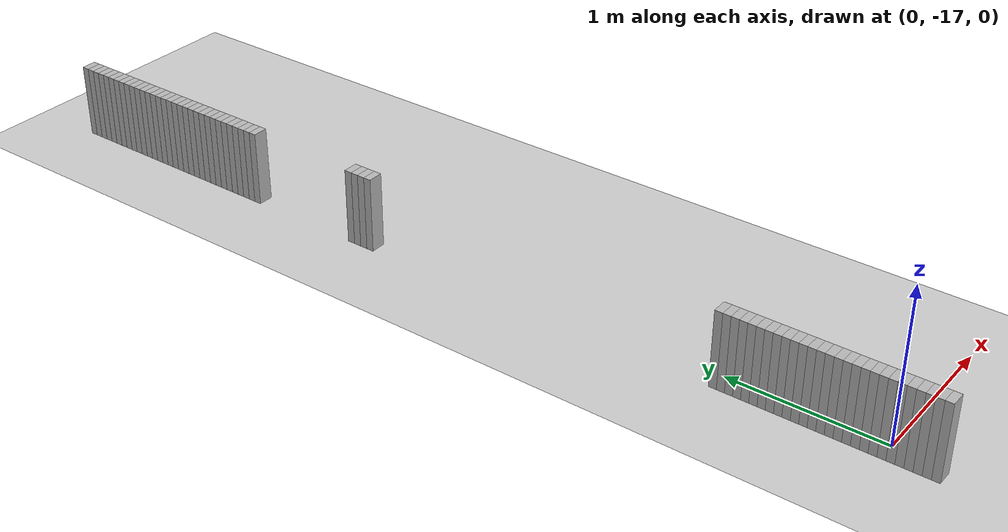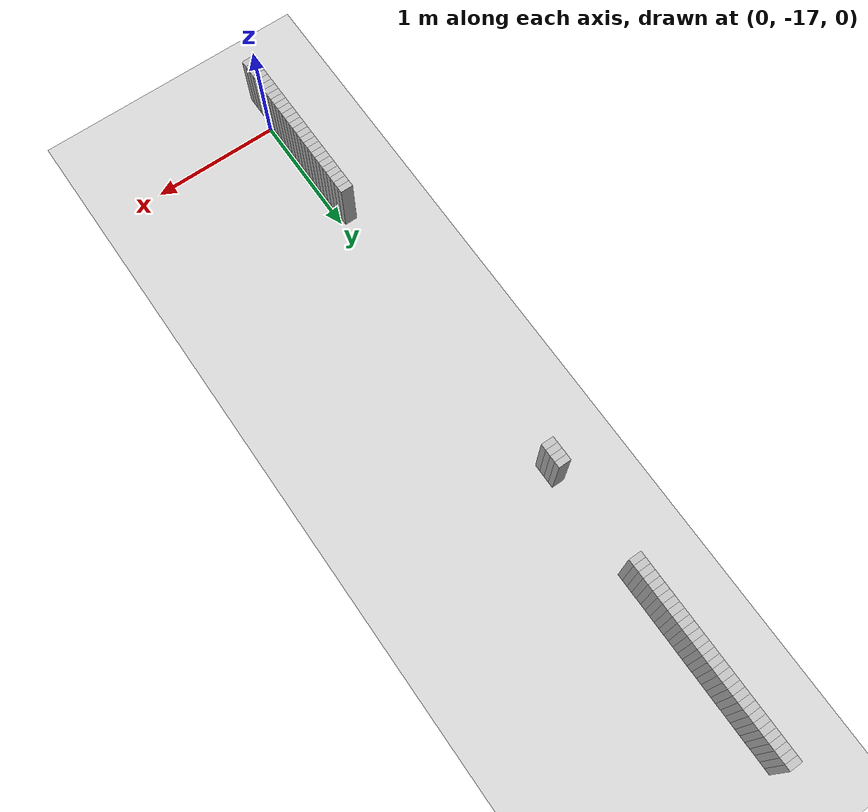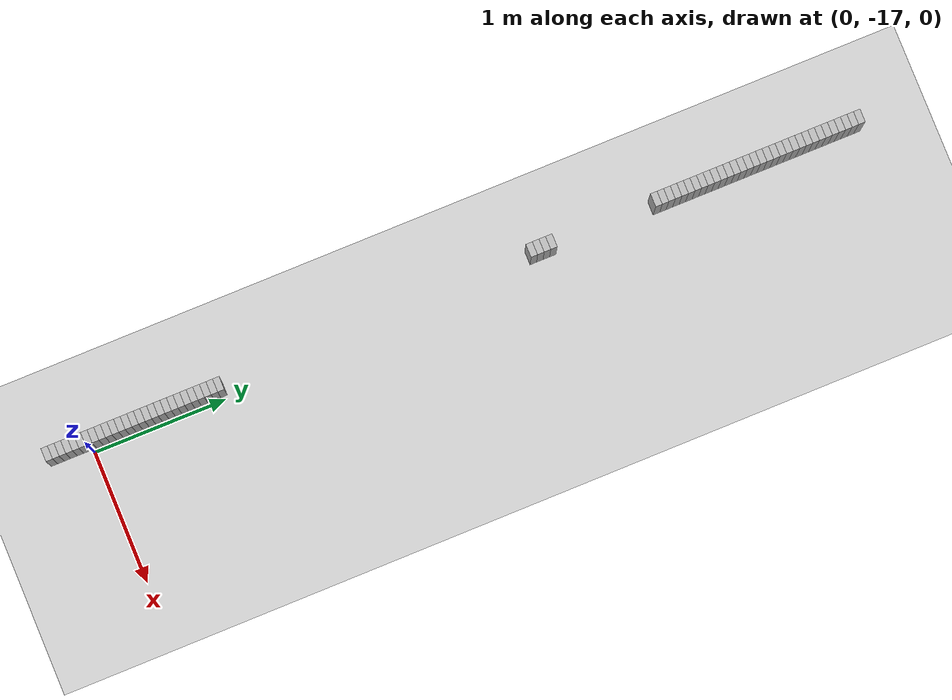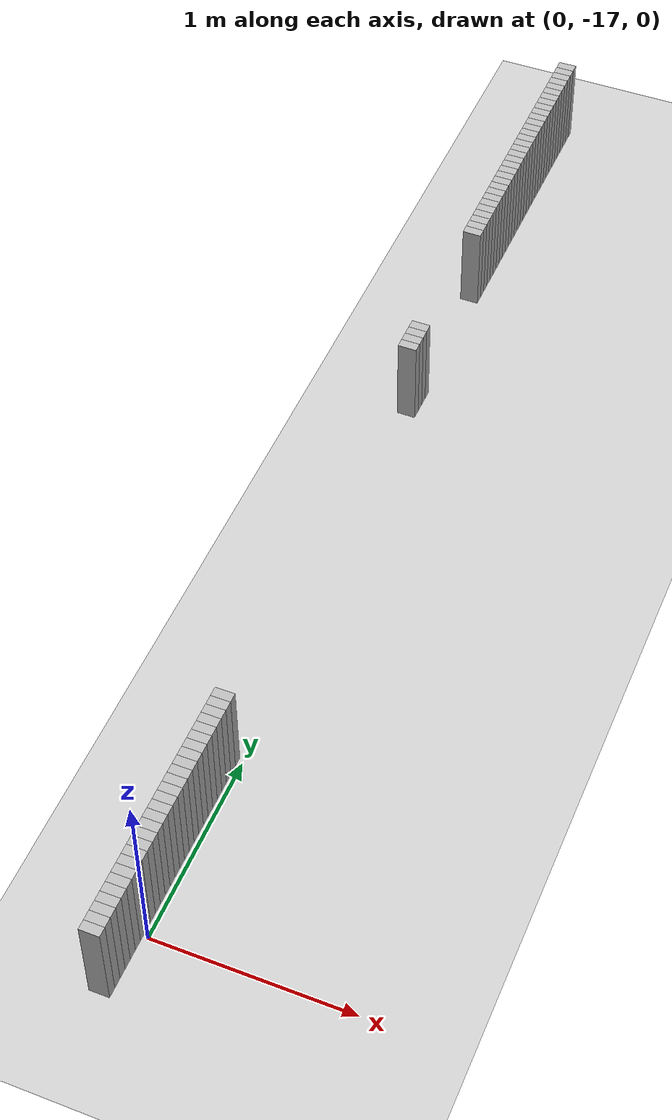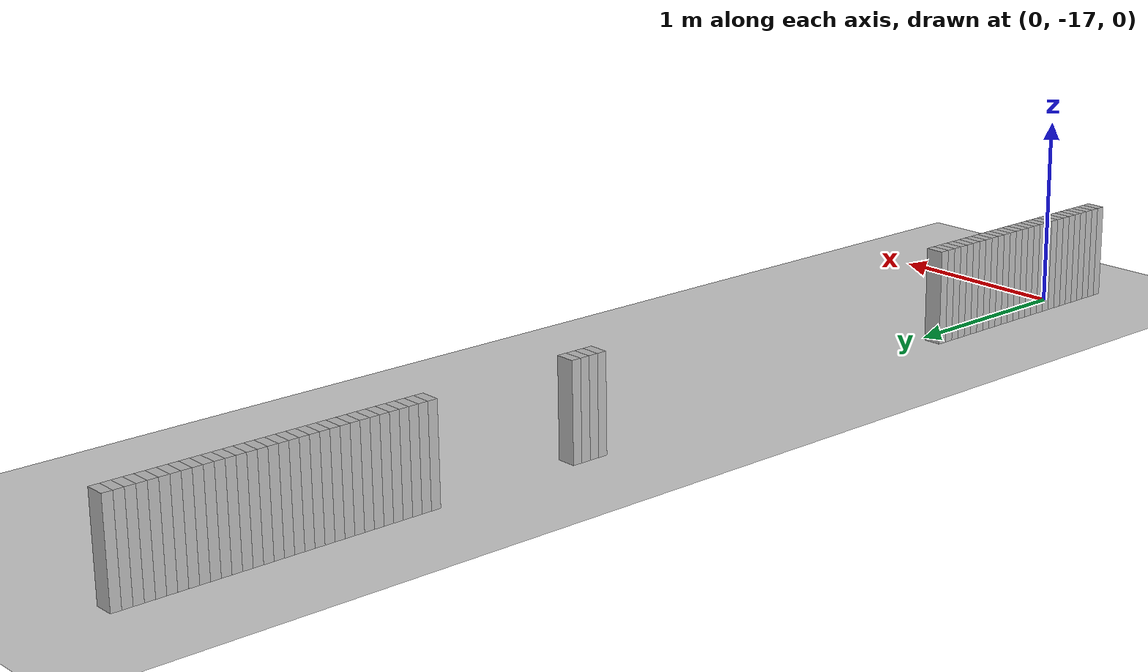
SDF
<sdf version="1.6">
 <world name="optimized_map_world">
  <include><uri>model://sun</uri></include>
  <include><uri>model://ground_plane</uri></include>
  <model name="obstacle_919">
   <static>true</static>
   <link name="link">
    <collision name="collision"><geometry><box><size>0.1 0.05 0.5</size></box></geometry></collision>
    <visual name="visual"><geometry><box><size>0.1 0.05 0.5</size></box></geometry></visual>
   </link>
   <pose>-0.125 -11.1 0.25 0 0 0</pose>
  </model>
  <model name="obstacle_923">
   <static>true</static>
   <link name="link">
    <collision name="collision"><geometry><box><size>0.1 0.05 0.5</size></box></geometry></collision>
    <visual name="visual"><geometry><box><size>0.1 0.05 0.5</size></box></geometry></visual>
   </link>
   <pose>-0.125 -11.15 0.25 0 0 0</pose>
  </model>
  <model name="obstacle_927">
   <static>true</static>
   <link name="link">
    <collision name="collision"><geometry><box><size>0.1 0.05 0.5</size></box></geometry></collision>
    <visual name="visual"><geometry><box><size>0.1 0.05 0.5</size></box></geometry></visual>
   </link>
   <pose>-0.125 -11.200000000000001 0.25 0 0 0</pose>
  </model>
  <model name="obstacle_931">
   <static>true</static>
   <link name="link">
    <collision name="collision"><geometry><box><size>0.1 0.05 0.5</size></box></geometry></collision>
    <visual name="visual"><geometry><box><size>0.1 0.05 0.5</size></box></geometry></visual>
   </link>
   <pose>-0.125 -11.25 0.25 0 0 0</pose>
  </model>
  <model name="obstacle_935">
   <static>true</static>
   <link name="link">
    <collision name="collision"><geometry><box><size>0.1 0.05 0.5</size></box></geometry></collision>
    <visual name="visual"><geometry><box><size>0.1 0.05 0.5</size></box></geometry></visual>
   </link>
   <pose>-0.125 -11.3 0.25 0 0 0</pose>
  </model>
  <model name="obstacle_939">
   <static>true</static>
   <link name="link">
    <collision name="collision"><geometry><box><size>0.1 0.05 0.5</size></box></geometry></collision>
    <visual name="visual"><geometry><box><size>0.1 0.05 0.5</size></box></geometry></visual>
   </link>
   <pose>-0.125 -11.35 0.25 0 0 0</pose>
  </model>
  <model name="obstacle_943">
   <static>true</static>
   <link name="link">
    <collision name="collision"><geometry><box><size>0.1 0.05 0.5</size></box></geometry></collision>
    <visual name="visual"><geometry><box><size>0.1 0.05 0.5</size></box></geometry></visual>
   </link>
   <pose>-0.125 -11.4 0.25 0 0 0</pose>
  </model>
  <model name="obstacle_947">
   <static>true</static>
   <link name="link">
    <collision name="collision"><geometry><box><size>0.1 0.05 0.5</size></box></geometry></collision>
    <visual name="visual"><geometry><box><size>0.1 0.05 0.5</size></box></geometry></visual>
   </link>
   <pose>-0.125 -11.450000000000001 0.25 0 0 0</pose>
  </model>
  <model name="obstacle_951">
   <static>true</static>
   <link name="link">
    <collision name="collision"><geometry><box><size>0.1 0.05 0.5</size></box></geometry></collision>
    <visual name="visual"><geometry><box><size>0.1 0.05 0.5</size></box></geometry></visual>
   </link>
   <pose>-0.125 -11.5 0.25 0 0 0</pose>
  </model>
  <model name="obstacle_955">
   <static>true</static>
   <link name="link">
    <collision name="collision"><geometry><box><size>0.1 0.05 0.5</size></box></geometry></collision>
    <visual name="visual"><geometry><box><size>0.1 0.05 0.5</size></box></geometry></visual>
   </link>
   <pose>-0.125 -11.55 0.25 0 0 0</pose>
  </model>
  <model name="obstacle_959">
   <static>true</static>
   <link name="link">
    <collision name="collision"><geometry><box><size>0.1 0.05 0.5</size></box></geometry></collision>
    <visual name="visual"><geometry><box><size>0.1 0.05 0.5</size></box></geometry></visual>
   </link>
   <pose>-0.125 -11.6 0.25 0 0 0</pose>
  </model>
  <model name="obstacle_963">
   <static>true</static>
   <link name="link">
    <collision name="collision"><geometry><box><size>0.1 0.05 0.5</size></box></geometry></collision>
    <visual name="visual"><geometry><box><size>0.1 0.05 0.5</size></box></geometry></visual>
   </link>
   <pose>-0.125 -11.65 0.25 0 0 0</pose>
  </model>
  <model name="obstacle_967">
   <static>true</static>
   <link name="link">
    <collision name="collision"><geometry><box><size>0.1 0.05 0.5</size></box></geometry></collision>
    <visual name="visual"><geometry><box><size>0.1 0.05 0.5</size></box></geometry></visual>
   </link>
   <pose>-0.125 -11.700000000000001 0.25 0 0 0</pose>
  </model>
  <model name="obstacle_971">
   <static>true</static>
   <link name="link">
    <collision name="collision"><geometry><box><size>0.1 0.05 0.5</size></box></geometry></collision>
    <visual name="visual"><geometry><box><size>0.1 0.05 0.5</size></box></geometry></visual>
   </link>
   <pose>-0.125 -11.75 0.25 0 0 0</pose>
  </model>
  <model name="obstacle_975">
   <static>true</static>
   <link name="link">
    <collision name="collision"><geometry><box><size>0.1 0.05 0.5</size></box></geometry></collision>
    <visual name="visual"><geometry><box><size>0.1 0.05 0.5</size></box></geometry></visual>
   </link>
   <pose>-0.125 -11.8 0.25 0 0 0</pose>
  </model>
  <model name="obstacle_979">
   <static>true</static>
   <link name="link">
    <collision name="collision"><geometry><box><size>0.1 0.05 0.5</size></box></geometry></collision>
    <visual name="visual"><geometry><box><size>0.1 0.05 0.5</size></box></geometry></visual>
   </link>
   <pose>-0.125 -11.85 0.25 0 0 0</pose>
  </model>
  <model name="obstacle_983">
   <static>true</static>
   <link name="link">
    <collision name="collision"><geometry><box><size>0.1 0.05 0.5</size></box></geometry></collision>
    <visual name="visual"><geometry><box><size>0.1 0.05 0.5</size></box></geometry></visual>
   </link>
   <pose>-0.125 -11.9 0.25 0 0 0</pose>
  </model>
  <model name="obstacle_987">
   <static>true</static>
   <link name="link">
    <collision name="collision"><geometry><box><size>0.1 0.05 0.5</size></box></geometry></collision>
    <visual name="visual"><geometry><box><size>0.1 0.05 0.5</size></box></geometry></visual>
   </link>
   <pose>-0.125 -11.950000000000001 0.25 0 0 0</pose>
  </model>
  <model name="obstacle_991">
   <static>true</static>
   <link name="link">
    <collision name="collision"><geometry><box><size>0.1 0.05 0.5</size></box></geometry></collision>
    <visual name="visual"><geometry><box><size>0.1 0.05 0.5</size></box></geometry></visual>
   </link>
   <pose>-0.125 -12.0 0.25 0 0 0</pose>
  </model>
  <model name="obstacle_995">
   <static>true</static>
   <link name="link">
    <collision name="collision"><geometry><box><size>0.1 0.05 0.5</size></box></geometry></collision>
    <visual name="visual"><geometry><box><size>0.1 0.05 0.5</size></box></geometry></visual>
   </link>
   <pose>-0.125 -12.05 0.25 0 0 0</pose>
  </model>
  <model name="obstacle_999">
   <static>true</static>
   <link name="link">
    <collision name="collision"><geometry><box><size>0.1 0.05 0.5</size></box></geometry></collision>
    <visual name="visual"><geometry><box><size>0.1 0.05 0.5</size></box></geometry></visual>
   </link>
   <pose>-0.125 -12.1 0.25 0 0 0</pose>
  </model>
  <model name="obstacle_1003">
   <static>true</static>
   <link name="link">
    <collision name="collision"><geometry><box><size>0.1 0.05 0.5</size></box></geometry></collision>
    <visual name="visual"><geometry><box><size>0.1 0.05 0.5</size></box></geometry></visual>
   </link>
   <pose>-0.125 -12.15 0.25 0 0 0</pose>
  </model>
  <model name="obstacle_1007">
   <static>true</static>
   <link name="link">
    <collision name="collision"><geometry><box><size>0.1 0.05 0.5</size></box></geometry></collision>
    <visual name="visual"><geometry><box><size>0.1 0.05 0.5</size></box></geometry></visual>
   </link>
   <pose>-0.125 -12.200000000000001 0.25 0 0 0</pose>
  </model>
  <model name="obstacle_1011">
   <static>true</static>
   <link name="link">
    <collision name="collision"><geometry><box><size>0.1 0.05 0.5</size></box></geometry></collision>
    <visual name="visual"><geometry><box><size>0.1 0.05 0.5</size></box></geometry></visual>
   </link>
   <pose>-0.125 -12.25 0.25 0 0 0</pose>
  </model>
  <model name="obstacle_1015">
   <static>true</static>
   <link name="link">
    <collision name="collision"><geometry><box><size>0.1 0.05 0.5</size></box></geometry></collision>
    <visual name="visual"><geometry><box><size>0.1 0.05 0.5</size></box></geometry></visual>
   </link>
   <pose>-0.125 -12.3 0.25 0 0 0</pose>
  </model>
  <model name="obstacle_1019">
   <static>true</static>
   <link name="link">
    <collision name="collision"><geometry><box><size>0.1 0.05 0.5</size></box></geometry></collision>
    <visual name="visual"><geometry><box><size>0.1 0.05 0.5</size></box></geometry></visual>
   </link>
   <pose>-0.125 -12.350000000000001 0.25 0 0 0</pose>
  </model>
  <model name="obstacle_1023">
   <static>true</static>
   <link name="link">
    <collision name="collision"><geometry><box><size>0.1 0.05 0.5</size></box></geometry></collision>
    <visual name="visual"><geometry><box><size>0.1 0.05 0.5</size></box></geometry></visual>
   </link>
   <pose>-0.125 -12.4 0.25 0 0 0</pose>
  </model>
  <model name="obstacle_1027">
   <static>true</static>
   <link name="link">
    <collision name="collision"><geometry><box><size>0.1 0.05 0.5</size></box></geometry></collision>
    <visual name="visual"><geometry><box><size>0.1 0.05 0.5</size></box></geometry></visual>
   </link>
   <pose>-0.125 -12.45 0.25 0 0 0</pose>
  </model>
  <model name="obstacle_1031">
   <static>true</static>
   <link name="link">
    <collision name="collision"><geometry><box><size>0.1 0.05 0.5</size></box></geometry></collision>
    <visual name="visual"><geometry><box><size>0.1 0.05 0.5</size></box></geometry></visual>
   </link>
   <pose>-0.125 -12.5 0.25 0 0 0</pose>
  </model>
  <model name="obstacle_1035">
   <static>true</static>
   <link name="link">
    <collision name="collision"><geometry><box><size>0.1 0.05 0.5</size></box></geometry></collision>
    <visual name="visual"><geometry><box><size>0.1 0.05 0.5</size></box></geometry></visual>
   </link>
   <pose>-0.125 -12.55 0.25 0 0 0</pose>
  </model>
  <model name="obstacle_1039">
   <static>true</static>
   <link name="link">
    <collision name="collision"><geometry><box><size>0.1 0.05 0.5</size></box></geometry></collision>
    <visual name="visual"><geometry><box><size>0.1 0.05 0.5</size></box></geometry></visual>
   </link>
   <pose>-0.125 -12.600000000000001 0.25 0 0 0</pose>
  </model>
  <model name="obstacle_1043">
   <static>true</static>
   <link name="link">
    <collision name="collision"><geometry><box><size>0.1 0.05 0.5</size></box></geometry></collision>
    <visual name="visual"><geometry><box><size>0.1 0.05 0.5</size></box></geometry></visual>
   </link>
   <pose>-0.125 -12.65 0.25 0 0 0</pose>
  </model>
  <model name="obstacle_1116">
   <static>true</static>
   <link name="link">
    <collision name="collision"><geometry><box><size>0.1 0.05 0.5</size></box></geometry></collision>
    <visual name="visual"><geometry><box><size>0.1 0.05 0.5</size></box></geometry></visual>
   </link>
   <pose>-0.125 -13.45 0.25 0 0 0</pose>
  </model>
  <model name="obstacle_1122">
   <static>true</static>
   <link name="link">
    <collision name="collision"><geometry><box><size>0.1 0.05 0.5</size></box></geometry></collision>
    <visual name="visual"><geometry><box><size>0.1 0.05 0.5</size></box></geometry></visual>
   </link>
   <pose>-0.125 -13.5 0.25 0 0 0</pose>
  </model>
  <model name="obstacle_1128">
   <static>true</static>
   <link name="link">
    <collision name="collision"><geometry><box><size>0.1 0.05 0.5</size></box></geometry></collision>
    <visual name="visual"><geometry><box><size>0.1 0.05 0.5</size></box></geometry></visual>
   </link>
   <pose>-0.125 -13.55 0.25 0 0 0</pose>
  </model>
  <model name="obstacle_1134">
   <static>true</static>
   <link name="link">
    <collision name="collision"><geometry><box><size>0.1 0.05 0.5</size></box></geometry></collision>
    <visual name="visual"><geometry><box><size>0.1 0.05 0.5</size></box></geometry></visual>
   </link>
   <pose>-0.125 -13.600000000000001 0.25 0 0 0</pose>
  </model>
  <model name="obstacle_1287">
   <static>true</static>
   <link name="link">
    <collision name="collision"><geometry><box><size>0.1 0.05 0.5</size></box></geometry></collision>
    <visual name="visual"><geometry><box><size>0.1 0.05 0.5</size></box></geometry></visual>
   </link>
   <pose>-0.07499999999999929 -16.0 0.25 0 0 0</pose>
  </model>
  <model name="obstacle_1291">
   <static>true</static>
   <link name="link">
    <collision name="collision"><geometry><box><size>0.1 0.05 0.5</size></box></geometry></collision>
    <visual name="visual"><geometry><box><size>0.1 0.05 0.5</size></box></geometry></visual>
   </link>
   <pose>-0.07499999999999929 -16.05 0.25 0 0 0</pose>
  </model>
  <model name="obstacle_1295">
   <static>true</static>
   <link name="link">
    <collision name="collision"><geometry><box><size>0.1 0.05 0.5</size></box></geometry></collision>
    <visual name="visual"><geometry><box><size>0.1 0.05 0.5</size></box></geometry></visual>
   </link>
   <pose>-0.07499999999999929 -16.1 0.25 0 0 0</pose>
  </model>
  <model name="obstacle_1299">
   <static>true</static>
   <link name="link">
    <collision name="collision"><geometry><box><size>0.1 0.05 0.5</size></box></geometry></collision>
    <visual name="visual"><geometry><box><size>0.1 0.05 0.5</size></box></geometry></visual>
   </link>
   <pose>-0.07499999999999929 -16.15 0.25 0 0 0</pose>
  </model>
  <model name="obstacle_1303">
   <static>true</static>
   <link name="link">
    <collision name="collision"><geometry><box><size>0.1 0.05 0.5</size></box></geometry></collision>
    <visual name="visual"><geometry><box><size>0.1 0.05 0.5</size></box></geometry></visual>
   </link>
   <pose>-0.07499999999999929 -16.2 0.25 0 0 0</pose>
  </model>
  <model name="obstacle_1307">
   <static>true</static>
   <link name="link">
    <collision name="collision"><geometry><box><size>0.1 0.05 0.5</size></box></geometry></collision>
    <visual name="visual"><geometry><box><size>0.1 0.05 0.5</size></box></geometry></visual>
   </link>
   <pose>-0.07499999999999929 -16.25 0.25 0 0 0</pose>
  </model>
  <model name="obstacle_1311">
   <static>true</static>
   <link name="link">
    <collision name="collision"><geometry><box><size>0.1 0.05 0.5</size></box></geometry></collision>
    <visual name="visual"><geometry><box><size>0.1 0.05 0.5</size></box></geometry></visual>
   </link>
   <pose>-0.07499999999999929 -16.3 0.25 0 0 0</pose>
  </model>
  <model name="obstacle_1315">
   <static>true</static>
   <link name="link">
    <collision name="collision"><geometry><box><size>0.1 0.05 0.5</size></box></geometry></collision>
    <visual name="visual"><geometry><box><size>0.1 0.05 0.5</size></box></geometry></visual>
   </link>
   <pose>-0.07499999999999929 -16.35 0.25 0 0 0</pose>
  </model>
  <model name="obstacle_1319">
   <static>true</static>
   <link name="link">
    <collision name="collision"><geometry><box><size>0.1 0.05 0.5</size></box></geometry></collision>
    <visual name="visual"><geometry><box><size>0.1 0.05 0.5</size></box></geometry></visual>
   </link>
   <pose>-0.07499999999999929 -16.4 0.25 0 0 0</pose>
  </model>
  <model name="obstacle_1323">
   <static>true</static>
   <link name="link">
    <collision name="collision"><geometry><box><size>0.1 0.05 0.5</size></box></geometry></collision>
    <visual name="visual"><geometry><box><size>0.1 0.05 0.5</size></box></geometry></visual>
   </link>
   <pose>-0.07499999999999929 -16.45 0.25 0 0 0</pose>
  </model>
  <model name="obstacle_1326">
   <static>true</static>
   <link name="link">
    <collision name="collision"><geometry><box><size>0.1 0.05 0.5</size></box></geometry></collision>
    <visual name="visual"><geometry><box><size>0.1 0.05 0.5</size></box></geometry></visual>
   </link>
   <pose>-0.07499999999999929 -16.5 0.25 0 0 0</pose>
  </model>
  <model name="obstacle_1329">
   <static>true</static>
   <link name="link">
    <collision name="collision"><geometry><box><size>0.1 0.05 0.5</size></box></geometry></collision>
    <visual name="visual"><geometry><box><size>0.1 0.05 0.5</size></box></geometry></visual>
   </link>
   <pose>-0.07499999999999929 -16.55 0.25 0 0 0</pose>
  </model>
  <model name="obstacle_1331">
   <static>true</static>
   <link name="link">
    <collision name="collision"><geometry><box><size>0.1 0.05 0.5</size></box></geometry></collision>
    <visual name="visual"><geometry><box><size>0.1 0.05 0.5</size></box></geometry></visual>
   </link>
   <pose>-0.07499999999999929 -16.6 0.25 0 0 0</pose>
  </model>
  <model name="obstacle_1333">
   <static>true</static>
   <link name="link">
    <collision name="collision"><geometry><box><size>0.1 0.05 0.5</size></box></geometry></collision>
    <visual name="visual"><geometry><box><size>0.1 0.05 0.5</size></box></geometry></visual>
   </link>
   <pose>-0.07499999999999929 -16.65 0.25 0 0 0</pose>
  </model>
  <model name="obstacle_1335">
   <static>true</static>
   <link name="link">
    <collision name="collision"><geometry><box><size>0.1 0.05 0.5</size></box></geometry></collision>
    <visual name="visual"><geometry><box><size>0.1 0.05 0.5</size></box></geometry></visual>
   </link>
   <pose>-0.07499999999999929 -16.7 0.25 0 0 0</pose>
  </model>
  <model name="obstacle_1337">
   <static>true</static>
   <link name="link">
    <collision name="collision"><geometry><box><size>0.1 0.05 0.5</size></box></geometry></collision>
    <visual name="visual"><geometry><box><size>0.1 0.05 0.5</size></box></geometry></visual>
   </link>
   <pose>-0.07499999999999929 -16.75 0.25 0 0 0</pose>
  </model>
  <model name="obstacle_1339">
   <static>true</static>
   <link name="link">
    <collision name="collision"><geometry><box><size>0.1 0.05 0.5</size></box></geometry></collision>
    <visual name="visual"><geometry><box><size>0.1 0.05 0.5</size></box></geometry></visual>
   </link>
   <pose>-0.07499999999999929 -16.8 0.25 0 0 0</pose>
  </model>
  <model name="obstacle_1341">
   <static>true</static>
   <link name="link">
    <collision name="collision"><geometry><box><size>0.1 0.05 0.5</size></box></geometry></collision>
    <visual name="visual"><geometry><box><size>0.1 0.05 0.5</size></box></geometry></visual>
   </link>
   <pose>-0.07499999999999929 -16.85 0.25 0 0 0</pose>
  </model>
  <model name="obstacle_1343">
   <static>true</static>
   <link name="link">
    <collision name="collision"><geometry><box><size>0.1 0.05 0.5</size></box></geometry></collision>
    <visual name="visual"><geometry><box><size>0.1 0.05 0.5</size></box></geometry></visual>
   </link>
   <pose>-0.07499999999999929 -16.9 0.25 0 0 0</pose>
  </model>
  <model name="obstacle_1345">
   <static>true</static>
   <link name="link">
    <collision name="collision"><geometry><box><size>0.1 0.05 0.5</size></box></geometry></collision>
    <visual name="visual"><geometry><box><size>0.1 0.05 0.5</size></box></geometry></visual>
   </link>
   <pose>-0.07499999999999929 -16.95 0.25 0 0 0</pose>
  </model>
  <model name="obstacle_1347">
   <static>true</static>
   <link name="link">
    <collision name="collision"><geometry><box><size>0.1 0.05 0.5</size></box></geometry></collision>
    <visual name="visual"><geometry><box><size>0.1 0.05 0.5</size></box></geometry></visual>
   </link>
   <pose>-0.07499999999999929 -17.0 0.25 0 0 0</pose>
  </model>
  <model name="obstacle_1349">
   <static>true</static>
   <link name="link">
    <collision name="collision"><geometry><box><size>0.1 0.05 0.5</size></box></geometry></collision>
    <visual name="visual"><geometry><box><size>0.1 0.05 0.5</size></box></geometry></visual>
   </link>
   <pose>-0.07499999999999929 -17.05 0.25 0 0 0</pose>
  </model>
  <model name="obstacle_1351">
   <static>true</static>
   <link name="link">
    <collision name="collision"><geometry><box><size>0.1 0.05 0.5</size></box></geometry></collision>
    <visual name="visual"><geometry><box><size>0.1 0.05 0.5</size></box></geometry></visual>
   </link>
   <pose>-0.07499999999999929 -17.1 0.25 0 0 0</pose>
  </model>
  <model name="obstacle_1353">
   <static>true</static>
   <link name="link">
    <collision name="collision"><geometry><box><size>0.1 0.05 0.5</size></box></geometry></collision>
    <visual name="visual"><geometry><box><size>0.1 0.05 0.5</size></box></geometry></visual>
   </link>
   <pose>-0.07499999999999929 -17.15 0.25 0 0 0</pose>
  </model>
  <model name="obstacle_1355">
   <static>true</static>
   <link name="link">
    <collision name="collision"><geometry><box><size>0.1 0.05 0.5</size></box></geometry></collision>
    <visual name="visual"><geometry><box><size>0.1 0.05 0.5</size></box></geometry></visual>
   </link>
   <pose>-0.07499999999999929 -17.2 0.25 0 0 0</pose>
  </model>
  <model name="obstacle_1357">
   <static>true</static>
   <link name="link">
    <collision name="collision"><geometry><box><size>0.1 0.05 0.5</size></box></geometry></collision>
    <visual name="visual"><geometry><box><size>0.1 0.05 0.5</size></box></geometry></visual>
   </link>
   <pose>-0.07499999999999929 -17.25 0.25 0 0 0</pose>
  </model>
  <model name="obstacle_1359">
   <static>true</static>
   <link name="link">
    <collision name="collision"><geometry><box><size>0.1 0.05 0.5</size></box></geometry></collision>
    <visual name="visual"><geometry><box><size>0.1 0.05 0.5</size></box></geometry></visual>
   </link>
   <pose>-0.07499999999999929 -17.3 0.25 0 0 0</pose>
  </model>
 </world>
</sdf>
